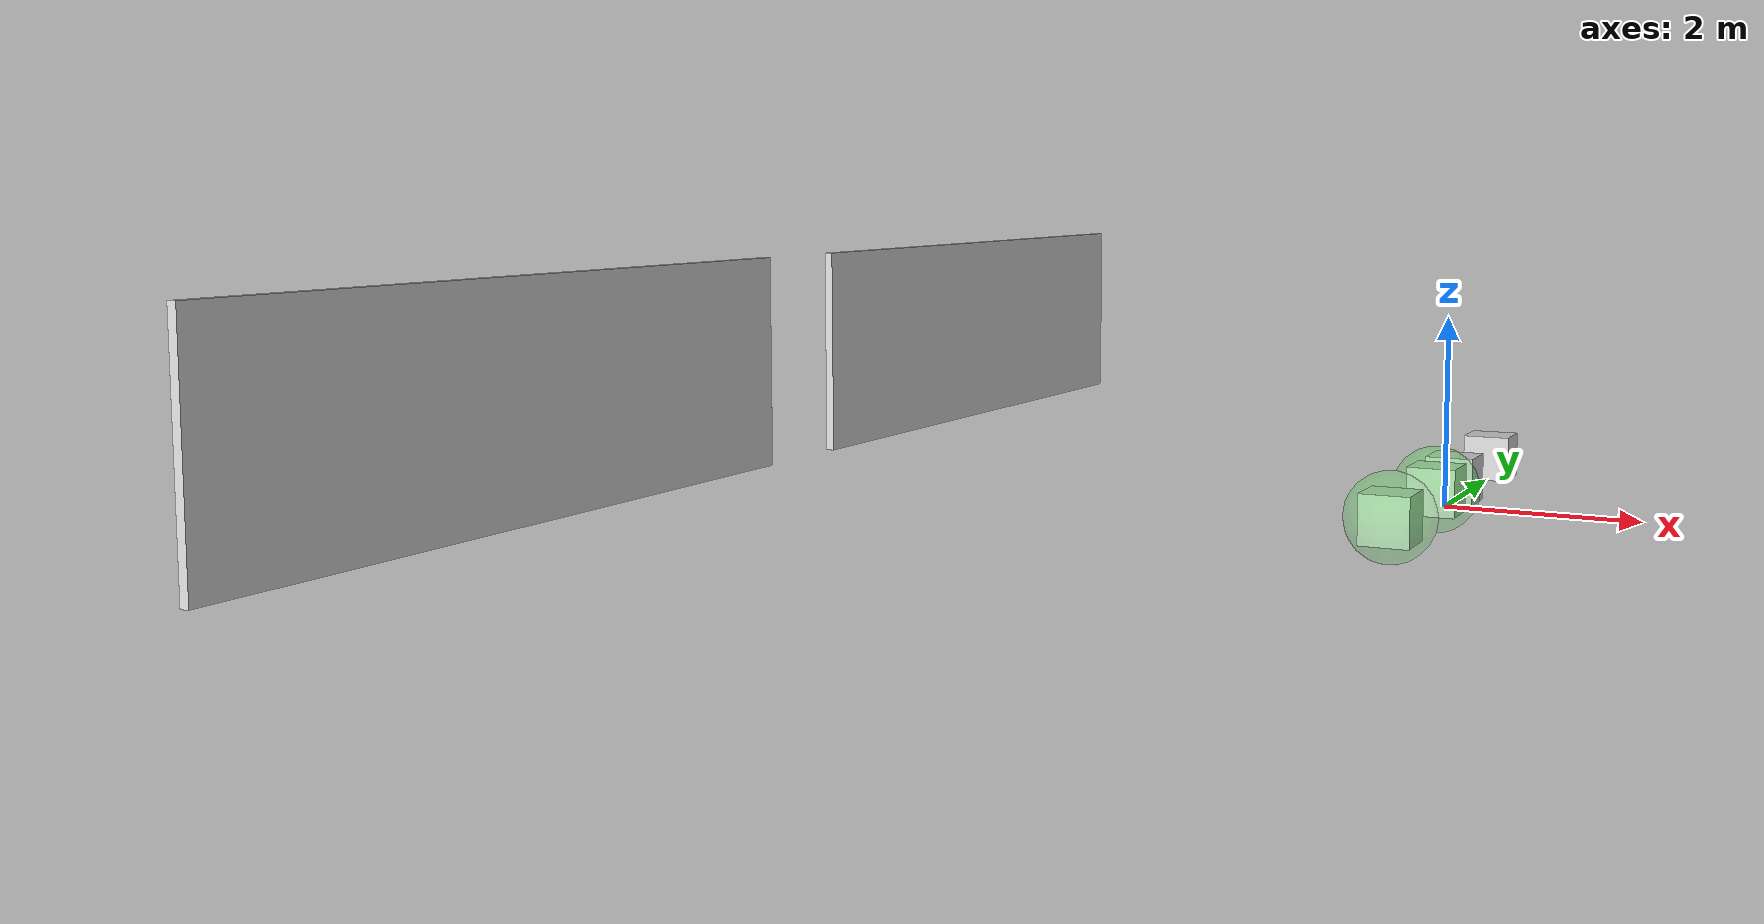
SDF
<?xml version="1.0" ?>
<sdf version="1.6">
  <model name="trap_d_1_a">
    <static>true</static>
    <include>
      <name>op_rr</name>
      <uri>model://vis_cue_attract</uri>
      <pose>0 -2.2 0.25 0 0 0</pose>
    </include>
    <include>
      <name>op_rl</name>
      <uri>model://vis_cue_attract</uri>
      <pose>0 -0.4 0.25 0 0 0</pose>
    </include>
    <include>
      <name>op_ll</name>
      <uri>model://vis_cue_normal</uri>
      <pose>0 2.2 0.25 0 0 0</pose>
    </include>
    <include>
      <name>op_lr</name>
      <uri>model://vis_cue_normal</uri>
      <pose>0 0.4 0.25 0 0 0</pose>
    </include>

    <include>
      <name>gate_m</name>
      <uri>model://study_track_gate_m</uri>
      <pose>0 0 0 0 0 0</pose>
    </include>
  </model>
</sdf>

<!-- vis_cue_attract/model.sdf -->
<sdf version="1.6">
  <model name="vis_cue_attract">
    <static>false</static>
    <pose>0 0 0.25 0 0 0</pose>
    <link name='vis_cue_attract'>
      <inertial>
        <mass>1</mass>
        <inertia>
          <ixx>0.166667</ixx>
          <ixy>0</ixy>
          <ixz>0</ixz>
          <iyy>0.166667</iyy>
          <iyz>0</iyz>
          <izz>0.166667</izz>
        </inertia>
      </inertial>
      <collision name='collision'>
        <geometry>
          <box>
            <size>0.5 0.5 0.5</size>
          </box>
        </geometry>
        <max_contacts>10</max_contacts>
        <surface>
          <contact>
            <ode/>
          </contact>
          <bounce/>
          <friction>
            <torsional>
              <ode/>
            </torsional>
            <ode/>
          </friction>
        </surface>
      </collision>
      <visual name='box_visual'>
        <geometry>
          <box>
            <size>0.5 0.5 0.5</size>
          </box>
        </geometry>
        <material>
          <ambient>0.85 0.85 0.85 1</ambient>
          <diffuse>0.85 0.85 0.85 1</diffuse>
          <specular>0.15 0.15 0.15 1</specular>
          <emissive>0 0 0 0</emissive>
        </material>
      </visual>
      <visual name='cue_visual'>
        <geometry>
          <mesh>
            <uri>model://vis_cue_attract/meshes/sphere.stl</uri>
            <scale>0.9 0.9 0.9</scale>
          </mesh>
        </geometry>
        <material>
          <ambient>0 1 0 0.10</ambient>
          <diffuse>0 1 0 0.20</diffuse>
          <specular>0 1 0 0.20</specular>
          <emissive>0 1 0 0.1</emissive>
        </material>
      </visual>
      <self_collide>0</self_collide>
      <kinematic>0</kinematic>
    </link>
  </model>
</sdf>

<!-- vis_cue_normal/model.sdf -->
<sdf version="1.6">
  <model name="vis_cue_normal">
    <static>false</static>
    <pose>0 0 0.25 0 0 0</pose>
    <link name='vis_cue_normal'>
      <inertial>
        <mass>1</mass>
        <inertia>
          <ixx>0.166667</ixx>
          <ixy>0</ixy>
          <ixz>0</ixz>
          <iyy>0.166667</iyy>
          <iyz>0</iyz>
          <izz>0.166667</izz>
        </inertia>
      </inertial>
      <collision name='collision'>
        <geometry>
          <box>
            <size>0.5 0.5 0.5</size>
          </box>
        </geometry>
        <max_contacts>10</max_contacts>
        <surface>
          <contact>
            <ode/>
          </contact>
          <bounce/>
          <friction>
            <torsional>
              <ode/>
            </torsional>
            <ode/>
          </friction>
        </surface>
      </collision>
      <visual name='box_visual'>
        <geometry>
          <box>
            <size>0.5 0.5 0.5</size>
          </box>
        </geometry>
        <material>
          <ambient>0.85 0.85 0.85 1</ambient>
          <diffuse>0.85 0.85 0.85 1</diffuse>
          <specular>0.15 0.15 0.15 1</specular>
          <emissive>0 0 0 0</emissive>
        </material>
      </visual>
      <self_collide>0</self_collide>
      <kinematic>0</kinematic>
    </link>
  </model>
</sdf>

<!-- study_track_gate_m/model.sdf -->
<sdf version="1.6">
  <model name="study_track_gate_m">
    <static>true</static>

    <link name='wall_l'>
      <pose>-8 -4.95 1.25 0 0 0</pose>
      <collision name='collision'>
        <geometry>
          <box>
            <size>0.1 8.5 2.5</size>
          </box>
        </geometry>
      </collision>
      <visual name='box_visual'>
        <geometry>
          <box>
            <size>0.1 8.5 2.5</size>
          </box>
        </geometry>
        <material>
          <ambient>0.85 0.85 0.85 1</ambient>
          <diffuse>0.85 0.85 0.85 1</diffuse>
          <specular>0.15 0.15 0.15 1</specular>
          <emissive>0 0 0 0</emissive>
        </material>
      </visual>
    </link>

    <link name='wall_r'>
      <pose>-8 4.95 1.25 0 0 0</pose>
      <collision name='collision'>
        <geometry>
          <box>
            <size>0.1 8.5 2.5</size>
          </box>
        </geometry>
      </collision>
      <visual name='box_visual'>
        <geometry>
          <box>
            <size>0.1 8.5 2.5</size>
          </box>
        </geometry>
        <material>
          <ambient>0.85 0.85 0.85 1</ambient>
          <diffuse>0.85 0.85 0.85 1</diffuse>
          <specular>0.15 0.15 0.15 1</specular>
          <emissive>0 0 0 0</emissive>
        </material>
      </visual>
    </link>

  </model>
</sdf>
